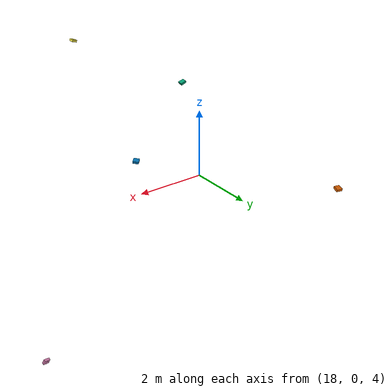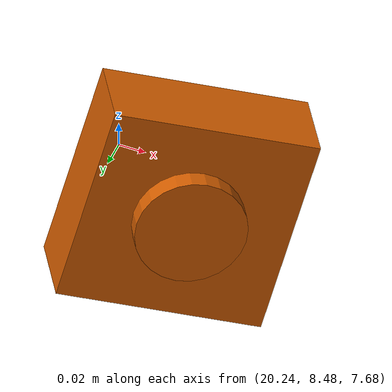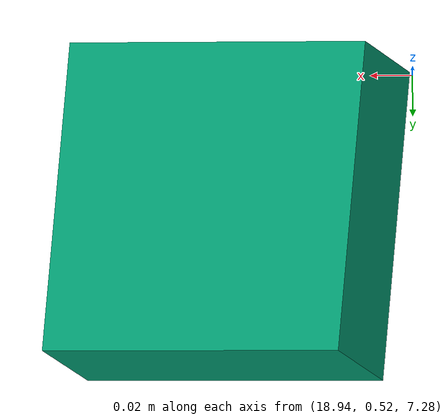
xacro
<?xml version="1.0"?>
<robot xmlns:xacro="http://www.ros.org/wiki/xacro"  name="robot">

    <xacro:arg name="camera_update_rate" default="30"/>
    <xacro:arg name="camera_streams" default="image depth semantic"/>

    <xacro:property name="camera_streams" value="$(arg camera_streams)" />
    <xacro:property name="camera_update_rate" value="$(arg camera_update_rate)" />

    <xacro:include filename="properties.xacro" />
    <xacro:include filename="camera_macros.xacro"/>
    <xacro:include filename="aruco_macros.xacro" />

    <!-- DEFINE INERTIA FOR ALL LINKS, GAZEBO COMPLAINS OTHERWISE-->

    <link name="world">
    </link>

    <link name="static_agents/base_link">
        <xacro:inertial_box mass="0.1" x="0.12" y="0.15" z="0.15"/>
    </link>

    <joint name="base_joint" type="fixed">
        <origin xyz="0 0 0" rpy="0 0 0"/>
        <parent link="world"/>
        <child link="static_agents/base_link"/>
    </joint>

    <xacro:include filename="camera_config.xacro" />

</robot>

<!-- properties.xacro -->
<robot xmlns:xacro="http://www.ros.org/wiki/xacro" >

    <material name="white">
        <color rgba="1 1 1 1"/>
    </material>

    <material name="orange">
        <color rgba="1 0.3 0.1 1"/>
    </material>

    <material name="blue">
        <color rgba="0.2 0.2 1 1"/>
    </material>

    <xacro:macro name="inertial_box" params="mass x y z">
        <inertial>
            <mass value="${mass}" />
            <inertia ixx="${(1/12) * mass * (y*y+z*z)}" ixy="0.0" ixz="0.0"
                    iyy="${(1/12) * mass * (x*x+z*z)}" iyz="0.0"
                    izz="${(1/12) * mass * (x*x+y*y)}" />
        </inertial>
    </xacro:macro>

    <xacro:property name="camera_fov" value="1.02974"/>
    <xacro:property name="camera_resolution_width" value="1920"/>
    <xacro:property name="camera_resolution_height" value="1080"/>
</robot>

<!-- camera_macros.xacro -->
<robot xmlns:xacro="http://www.ros.org/wiki/xacro">

    <xacro:macro name="camera_link" params="number" >

        <link name="static_agents/camera_${number}_link">
          <visual>
              <origin xyz="-0.03 0 0" rpy="0 0 0"/>
              <geometry>
                  <box size="0.06 0.15 0.15" />
              </geometry>
          </visual>
          <visual>
              <origin xyz="0.00 0 0" rpy="0 ${pi/2} 0"/>
              <geometry>
                  <cylinder length="0.03" radius="0.04" />
              </geometry>
          </visual>
        </link>
        <xacro:inertial_box mass="0.1" x="0.12" y="0.15" z="0.15"/>
    </xacro:macro>

    <xacro:macro name="camera_joint" params="number x y z r p w">
        <joint name="camera_${number}_joint" type="fixed">
            <origin xyz="${x} ${y} ${z}" rpy="${r} ${p} ${w}"/>
            <parent link="static_agents/base_link"/>
            <child link="static_agents/camera_${number}_link"/>
        </joint>
    </xacro:macro>

    <xacro:macro name="camera_gazebo" params="number width height k1 k2 k3 p1 p2 horizontal_fov aspect_ratio fx fy cx cy">
        <gazebo reference="static_agents/camera_${number}_link">
            <xacro:define_cameras camera_streams="${camera_streams}" camera_update_rate="${camera_update_rate}" number="${number}" width="${width}" height="${height}" k1="${k1}" k2="${k2}" k3="${k3}" p1="${p1}" p2="${p2}" horizontal_fov="${horizontal_fov}" aspect_ratio="${aspect_ratio}" fx="${fx}" fy="${fy}" cx="${cx}" cy="${cy}" />
        </gazebo>
    </xacro:macro>

    <xacro:macro name="define_cameras" params="camera_streams camera_update_rate number width height k1 k2 k3 p1 p2 horizontal_fov aspect_ratio fx fy cx cy">
        <!-- Image camera -->
        <xacro:if value="${camera_streams.find('image') != -1}">
            <sensor name="camera_${number}" type="camera">
                <always_on>true</always_on>
                <visualize>true</visualize>
                <update_rate>${camera_update_rate}</update_rate>
                <camera name="intel_realsense_r200">
                    <horizontal_fov>${horizontal_fov}</horizontal_fov>
                    <camera_info_topic>camera_${number}/camera_info</camera_info_topic>
                    <image>
                        <width>${width}</width>
                        <height>${height}</height>
                        <format>R8G8B8</format>
                    </image>
                    <clip>
                        <near>0.1</near>
                        <far>100</far>
                    </clip>
                    <lens>
                        <radial_tangential>
                            <k1>${k1}</k1>
                            <k2>${k2}</k2>
                            <k3>${k3}</k3>
                            <p1>${p1}</p1>
                            <p2>${p2}</p2>
                        </radial_tangential>
                    </lens>
                </camera>
                <topic>camera_${number}/image_raw</topic>
                <gz_frame_id>camera_link_optical</gz_frame_id>
            </sensor>
        </xacro:if>

        <!-- Depth camera -->
        <xacro:if value="${camera_streams.find('depth') != -1}">
            <sensor name="depth_${number}" type="depth_camera">
                <pose>0 0.0175 0.0125 0 0 0</pose>
                <update_rate>${camera_update_rate}</update_rate>
                <always_on>0</always_on>
                <camera>
                    <horizontal_fov>1.51843645</horizontal_fov>
                    <camera_info_topic>depth_camera_${number}/camera_info</camera_info_topic>
                    <image>
                        <width>${width}</width>
                        <height>${height}</height>
                        <format>R_FLOAT32</format>
                    </image>
                    <clip>
                        <near>0.1</near>
                        <far>100</far>
                    </clip>
                    <lens>
                        <intrinsics>
                            <fx>${fx}</fx>
                            <fy>${fy}</fy>
                            <cx>${cx}</cx>
                            <cy>${cy}</cy>
                            <s>0</s>
                        </intrinsics>
                    </lens>
                </camera>
                <topic>depth_camera_${number}/image_raw</topic>
                <gz_frame_id>depth_camera_link_optical</gz_frame_id>
            </sensor>
        </xacro:if>

        <!-- Semantic camera -->
        <xacro:if value="${camera_streams.find('semantic') != -1}">
            <sensor name="semantic_camera_${number}" type="segmentation">
                <always_on>1</always_on>
                <update_rate>${camera_update_rate}</update_rate>
                <topic>semantic_camera_${number}</topic>
                <camera>
                    <segmentation_type>semantic</segmentation_type>
                    <horizontal_fov>${horizontal_fov}</horizontal_fov>
                    <camera_info_topic>semantic_camera_${number}/camera_info</camera_info_topic>
                    <image>
                    <width>${width}</width><height>${height}</height>
                    </image>
                    <clip><near>0.1</near><far>100</far></clip>
                    <save enabled="false"/>
                </camera>
                <topic>semantic_camera_${number}/image_raw</topic>
                <gz_frame_id>semantic_camera_link_optical</gz_frame_id>
                <visualize>true</visualize>
            </sensor>
        </xacro:if>
    </xacro:macro>

    <xacro:macro name="camera" params="number x y z r p w width height k1 k2 k3 p1 p2 horizontal_fov aspect_ratio fx fy cx cy">
        <xacro:camera_link number="${number}"/>
        <xacro:camera_joint number="${number}" x="${x}" y="${y}" z="${z}" r="${r}" p="${p}" w="${w}"/>
        <xacro:camera_gazebo number="${number}" width="${width}" height="${height}" k1="${k1}" k2="${k2}" k3="${k3}" p1="${p1}" p2="${p2}" horizontal_fov="${horizontal_fov}" aspect_ratio="${aspect_ratio}" fx="${fx}" fy="${fy}" cx="${cx}" cy="${cy}" />
    </xacro:macro>

</robot>
